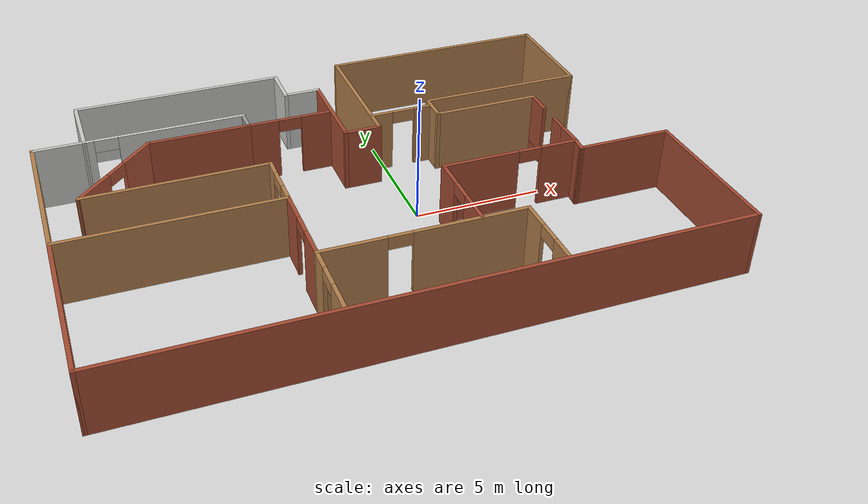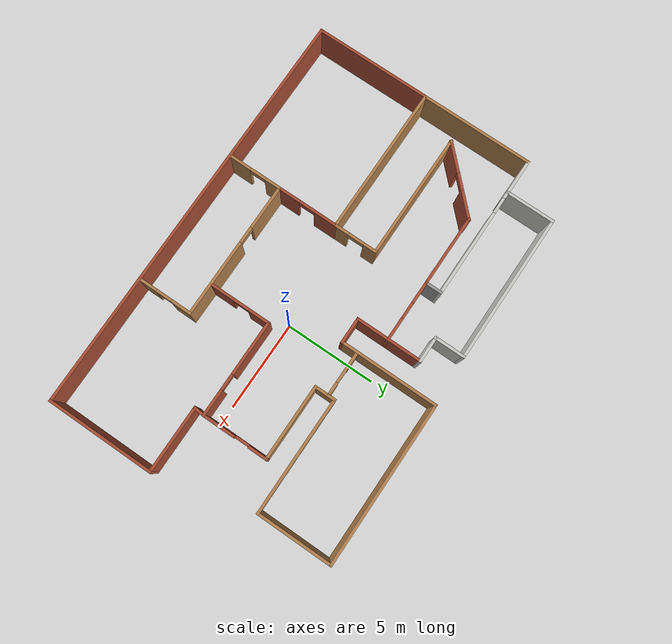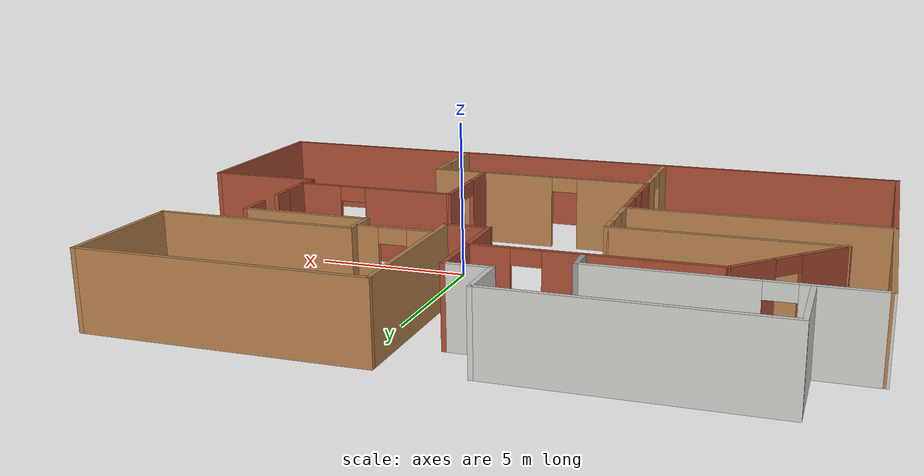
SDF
<?xml version='1.0'?>
<sdf version='1.7'>
  <model name='my_world'>
    <pose>-1.80415 0.520431 0 0 -0 0</pose>
    <link name='Wall_0'>
      <pose>5.19915 -1.20043 0 0 -0 0</pose>
      <visual name='Wall_0_Visual_0'>
        <pose>-1.21752 0 1.25 0 -0 0</pose>
        <geometry>
          <box>
            <size>3.06495 0.15 2.5</size>
          </box>
        </geometry>
        <material>
          <script>
            <uri>file://media/materials/scripts/gazebo.material</uri>
            <name>Gazebo/Bricks</name>
          </script>
          <ambient>1 1 1 1</ambient>
        </material>
        <meta>
          <layer>0</layer>
        </meta>
      </visual>
      <collision name='Wall_0_Collision_0'>
        <geometry>
          <box>
            <size>3.06495 0.15 2.5</size>
          </box>
        </geometry>
        <pose>-1.21752 0 1.25 0 -0 0</pose>
      </collision>
      <visual name='Wall_0_Visual_1'>
        <pose>1.98248 0 1.25 0 -0 0</pose>
        <geometry>
          <box>
            <size>1.53505 0.15 2.5</size>
          </box>
        </geometry>
        <material>
          <script>
            <uri>file://media/materials/scripts/gazebo.material</uri>
            <name>Gazebo/Bricks</name>
          </script>
          <ambient>1 1 1 1</ambient>
        </material>
        <meta>
          <layer>0</layer>
        </meta>
      </visual>
      <collision name='Wall_0_Collision_1'>
        <geometry>
          <box>
            <size>1.53505 0.15 2.5</size>
          </box>
        </geometry>
        <pose>1.98248 0 1.25 0 -0 0</pose>
      </collision>
      <visual name='Wall_0_Visual_2'>
        <pose>0.764952 0 2.25 0 -0 0</pose>
        <geometry>
          <box>
            <size>0.9 0.15 0.5</size>
          </box>
        </geometry>
        <material>
          <script>
            <uri>file://media/materials/scripts/gazebo.material</uri>
            <name>Gazebo/Bricks</name>
          </script>
          <ambient>1 1 1 1</ambient>
        </material>
        <meta>
          <layer>0</layer>
        </meta>
      </visual>
      <collision name='Wall_0_Collision_2'>
        <geometry>
          <box>
            <size>0.9 0.15 0.5</size>
          </box>
        </geometry>
        <pose>0.764952 0 2.25 0 -0 0</pose>
      </collision>
    </link>
    <link name='Wall_1'>
      <pose>7.87416 0.599569 0 0 -0 1.5708</pose>
      <visual name='Wall_1_Visual_0'>
        <pose>-1.32441 0 1.25 0 -0 0</pose>
        <geometry>
          <box>
            <size>1.10117 0.15 2.5</size>
          </box>
        </geometry>
        <material>
          <script>
            <uri>file://media/materials/scripts/gazebo.material</uri>
            <name>Gazebo/Bricks</name>
          </script>
          <ambient>1 1 1 1</ambient>
        </material>
        <meta>
          <layer>0</layer>
        </meta>
      </visual>
      <collision name='Wall_1_Collision_0'>
        <geometry>
          <box>
            <size>1.10117 0.15 2.5</size>
          </box>
        </geometry>
        <pose>-1.32441 0 1.25 0 -0 0</pose>
      </collision>
      <visual name='Wall_1_Visual_1'>
        <pose>0.550585 0 0.25 0 -0 0</pose>
        <geometry>
          <box>
            <size>2.64883 0.15 0.5</size>
          </box>
        </geometry>
        <material>
          <script>
            <uri>file://media/materials/scripts/gazebo.material</uri>
            <name>Gazebo/Bricks</name>
          </script>
          <ambient>1 1 1 1</ambient>
        </material>
        <meta>
          <layer>0</layer>
        </meta>
      </visual>
      <collision name='Wall_1_Collision_1'>
        <geometry>
          <box>
            <size>2.64883 0.15 0.5</size>
          </box>
        </geometry>
        <pose>0.550585 0 0.25 0 -0 0</pose>
      </collision>
      <visual name='Wall_1_Visual_2'>
        <pose>1.32206 0 1.5 0 -0 0</pose>
        <geometry>
          <box>
            <size>1.10588 0.15 2</size>
          </box>
        </geometry>
        <material>
          <script>
            <uri>file://media/materials/scripts/gazebo.material</uri>
            <name>Gazebo/Bricks</name>
          </script>
          <ambient>1 1 1 1</ambient>
        </material>
        <meta>
          <layer>0</layer>
        </meta>
      </visual>
      <collision name='Wall_1_Collision_2'>
        <geometry>
          <box>
            <size>1.10588 0.15 2</size>
          </box>
        </geometry>
        <pose>1.32206 0 1.5 0 -0 0</pose>
      </collision>
      <visual name='Wall_1_Visual_3'>
        <pose>-0.402355 0 1.9 0 -0 0</pose>
        <geometry>
          <box>
            <size>0.742949 0.15 1.2</size>
          </box>
        </geometry>
        <material>
          <script>
            <uri>file://media/materials/scripts/gazebo.material</uri>
            <name>Gazebo/Bricks</name>
          </script>
          <ambient>1 1 1 1</ambient>
        </material>
        <meta>
          <layer>0</layer>
        </meta>
      </visual>
      <collision name='Wall_1_Collision_3'>
        <geometry>
          <box>
            <size>0.742949 0.15 1.2</size>
          </box>
        </geometry>
        <pose>-0.402355 0 1.9 0 -0 0</pose>
      </collision>
    </link>
    <link name='Wall_10'>
      <collision name='Wall_10_Collision'>
        <geometry>
          <box>
            <size>1.5 0.15 2.5</size>
          </box>
        </geometry>
        <pose>0 0 1.25 0 -0 0</pose>
      </collision>
      <visual name='Wall_10_Visual'>
        <pose>0 0 1.25 0 -0 0</pose>
        <geometry>
          <box>
            <size>1.5 0.15 2.5</size>
          </box>
        </geometry>
        <material>
          <script>
            <uri>file://media/materials/scripts/gazebo.material</uri>
            <name>Gazebo/CeilingTiled</name>
          </script>
          <ambient>1 1 1 1</ambient>
        </material>
        <meta>
          <layer>0</layer>
        </meta>
      </visual>
      <pose>-0.750846 5.84957 0 0 -0 3.14159</pose>
    </link>
    <link name='Wall_11'>
      <collision name='Wall_11_Collision'>
        <geometry>
          <box>
            <size>1.75 0.15 2.5</size>
          </box>
        </geometry>
        <pose>0 0 1.25 0 -0 0</pose>
      </collision>
      <visual name='Wall_11_Visual'>
        <pose>0 0 1.25 0 -0 0</pose>
        <geometry>
          <box>
            <size>1.75 0.15 2.5</size>
          </box>
        </geometry>
        <material>
          <script>
            <uri>file://media/materials/scripts/gazebo.material</uri>
            <name>Gazebo/CeilingTiled</name>
          </script>
          <ambient>1 1 1 1</ambient>
        </material>
        <meta>
          <layer>0</layer>
        </meta>
      </visual>
      <pose>-1.42585 6.64957 0 0 -0 1.5708</pose>
    </link>
    <link name='Wall_12'>
      <collision name='Wall_12_Collision'>
        <geometry>
          <box>
            <size>8.25 0.15 2.5</size>
          </box>
        </geometry>
        <pose>0 0 1.25 0 -0 0</pose>
      </collision>
      <visual name='Wall_12_Visual'>
        <pose>0 0 1.25 0 -0 0</pose>
        <geometry>
          <box>
            <size>8.25 0.15 2.5</size>
          </box>
        </geometry>
        <material>
          <script>
            <uri>file://media/materials/scripts/gazebo.material</uri>
            <name>Gazebo/CeilingTiled</name>
          </script>
          <ambient>1 1 1 1</ambient>
        </material>
        <meta>
          <layer>0</layer>
        </meta>
      </visual>
      <pose>-5.47585 7.44957 0 0 -0 3.14159</pose>
    </link>
    <link name='Wall_13'>
      <collision name='Wall_13_Collision'>
        <geometry>
          <box>
            <size>2.75 0.15 2.5</size>
          </box>
        </geometry>
        <pose>0 0 1.25 0 -0 0</pose>
      </collision>
      <visual name='Wall_13_Visual'>
        <pose>0 0 1.25 0 -0 0</pose>
        <geometry>
          <box>
            <size>2.75 0.15 2.5</size>
          </box>
        </geometry>
        <material>
          <script>
            <uri>file://media/materials/scripts/gazebo.material</uri>
            <name>Gazebo/CeilingTiled</name>
          </script>
          <ambient>1 1 1 1</ambient>
        </material>
        <meta>
          <layer>0</layer>
        </meta>
      </visual>
      <pose>-9.52585 6.14957 0 0 -0 -1.5708</pose>
    </link>
    <link name='Wall_14'>
      <pose>-6.47584 4.84957 0 0 -0 0</pose>
      <visual name='Wall_14_Visual_0'>
        <pose>-2.90772 0 1.25 0 -0 0</pose>
        <geometry>
          <box>
            <size>0.434569 0.15 2.5</size>
          </box>
        </geometry>
        <material>
          <script>
            <uri>file://media/materials/scripts/gazebo.material</uri>
            <name>Gazebo/CeilingTiled</name>
          </script>
          <ambient>1 1 1 1</ambient>
        </material>
        <meta>
          <layer>0</layer>
        </meta>
      </visual>
      <collision name='Wall_14_Collision_0'>
        <geometry>
          <box>
            <size>0.434569 0.15 2.5</size>
          </box>
        </geometry>
        <pose>-2.90772 0 1.25 0 -0 0</pose>
      </collision>
      <visual name='Wall_14_Visual_1'>
        <pose>0.667285 0 1.25 0 -0 0</pose>
        <geometry>
          <box>
            <size>4.91543 0.15 2.5</size>
          </box>
        </geometry>
        <material>
          <script>
            <uri>file://media/materials/scripts/gazebo.material</uri>
            <name>Gazebo/CeilingTiled</name>
          </script>
          <ambient>1 1 1 1</ambient>
        </material>
        <meta>
          <layer>0</layer>
        </meta>
      </visual>
      <collision name='Wall_14_Collision_1'>
        <geometry>
          <box>
            <size>4.91543 0.15 2.5</size>
          </box>
        </geometry>
        <pose>0.667285 0 1.25 0 -0 0</pose>
      </collision>
      <visual name='Wall_14_Visual_2'>
        <pose>-2.24043 0 2.25 0 -0 0</pose>
        <geometry>
          <box>
            <size>0.9 0.15 0.5</size>
          </box>
        </geometry>
        <material>
          <script>
            <uri>file://media/materials/scripts/gazebo.material</uri>
            <name>Gazebo/CeilingTiled</name>
          </script>
          <ambient>1 1 1 1</ambient>
        </material>
        <meta>
          <layer>0</layer>
        </meta>
      </visual>
      <collision name='Wall_14_Collision_2'>
        <geometry>
          <box>
            <size>0.9 0.15 0.5</size>
          </box>
        </geometry>
        <pose>-2.24043 0 2.25 0 -0 0</pose>
      </collision>
    </link>
    <link name='Wall_15'>
      <collision name='Wall_15_Collision'>
        <geometry>
          <box>
            <size>1 0.15 2.5</size>
          </box>
        </geometry>
        <pose>0 0 1.25 0 -0 0</pose>
      </collision>
      <visual name='Wall_15_Visual'>
        <pose>0 0 1.25 0 -0 0</pose>
        <geometry>
          <box>
            <size>1 0.15 2.5</size>
          </box>
        </geometry>
        <material>
          <script>
            <uri>file://media/materials/scripts/gazebo.material</uri>
            <name>Gazebo/Grey</name>
          </script>
          <ambient>1 1 1 1</ambient>
        </material>
        <meta>
          <layer>0</layer>
        </meta>
      </visual>
      <pose>-3.42585 4.42457 0 0 -0 -1.5708</pose>
    </link>
    <link name='Wall_16'>
      <collision name='Wall_16_Collision'>
        <geometry>
          <box>
            <size>4 0.15 2.5</size>
          </box>
        </geometry>
        <pose>0 0 1.25 0 -0 0</pose>
      </collision>
      <visual name='Wall_16_Visual'>
        <pose>0 0 1.25 0 -0 0</pose>
        <geometry>
          <box>
            <size>4 0.15 2.5</size>
          </box>
        </geometry>
        <material>
          <script>
            <uri>file://media/materials/scripts/gazebo.material</uri>
            <name>Gazebo/Bricks</name>
          </script>
          <ambient>1 1 1 1</ambient>
        </material>
        <meta>
          <layer>0</layer>
        </meta>
      </visual>
      <pose>-5.35085 3.99957 0 0 -0 3.14159</pose>
    </link>
    <link name='Wall_17'>
      <pose>-8.72541 2.55 0 0 -0 -2.35619</pose>
      <visual name='Wall_17_Visual_0'>
        <pose>-1.31893 0 1.25 0 -0 0</pose>
        <geometry>
          <box>
            <size>1.61213 0.15 2.5</size>
          </box>
        </geometry>
        <material>
          <script>
            <uri>file://media/materials/scripts/gazebo.material</uri>
            <name>Gazebo/Bricks</name>
          </script>
          <ambient>1 1 1 1</ambient>
        </material>
        <meta>
          <layer>0</layer>
        </meta>
      </visual>
      <collision name='Wall_17_Collision_0'>
        <geometry>
          <box>
            <size>1.61213 0.15 2.5</size>
          </box>
        </geometry>
        <pose>-1.31893 0 1.25 0 -0 0</pose>
      </collision>
      <visual name='Wall_17_Visual_1'>
        <pose>1.25606 0 1.25 0 -0 0</pose>
        <geometry>
          <box>
            <size>1.73787 0.15 2.5</size>
          </box>
        </geometry>
        <material>
          <script>
            <uri>file://media/materials/scripts/gazebo.material</uri>
            <name>Gazebo/Bricks</name>
          </script>
          <ambient>1 1 1 1</ambient>
        </material>
        <meta>
          <layer>0</layer>
        </meta>
      </visual>
      <collision name='Wall_17_Collision_1'>
        <geometry>
          <box>
            <size>1.73787 0.15 2.5</size>
          </box>
        </geometry>
        <pose>1.25606 0 1.25 0 -0 0</pose>
      </collision>
      <visual name='Wall_17_Visual_2'>
        <pose>-0.06287 0 2.25 0 -0 0</pose>
        <geometry>
          <box>
            <size>0.9 0.15 0.5</size>
          </box>
        </geometry>
        <material>
          <script>
            <uri>file://media/materials/scripts/gazebo.material</uri>
            <name>Gazebo/Bricks</name>
          </script>
          <ambient>1 1 1 1</ambient>
        </material>
        <meta>
          <layer>0</layer>
        </meta>
      </visual>
      <collision name='Wall_17_Collision_2'>
        <geometry>
          <box>
            <size>0.9 0.15 0.5</size>
          </box>
        </geometry>
        <pose>-0.06287 0 2.25 0 -0 0</pose>
      </collision>
    </link>
    <link name='Wall_18'>
      <collision name='Wall_18_Collision'>
        <geometry>
          <box>
            <size>7 0.15 2.5</size>
          </box>
        </geometry>
        <pose>0 0 1.25 0 -0 0</pose>
      </collision>
      <visual name='Wall_18_Visual'>
        <pose>0 0 1.25 0 -0 0</pose>
        <geometry>
          <box>
            <size>7 0.15 2.5</size>
          </box>
        </geometry>
        <material>
          <script>
            <uri>file://media/materials/scripts/gazebo.material</uri>
            <name>Gazebo/Wood</name>
          </script>
          <ambient>1 1 1 1</ambient>
        </material>
        <meta>
          <layer>0</layer>
        </meta>
      </visual>
      <pose>-6.74998 1.10043 0 0 -0 0</pose>
    </link>
    <link name='Wall_19'>
      <pose>-3.32498 -0.074569 0 0 -0 -1.5708</pose>
      <visual name='Wall_19_Visual_0'>
        <pose>-0.876329 0 1.25 0 -0 0</pose>
        <geometry>
          <box>
            <size>0.747341 0.15 2.5</size>
          </box>
        </geometry>
        <material>
          <script>
            <uri>file://media/materials/scripts/gazebo.material</uri>
            <name>Gazebo/Wood</name>
          </script>
          <ambient>1 1 1 1</ambient>
        </material>
        <meta>
          <layer>0</layer>
        </meta>
      </visual>
      <collision name='Wall_19_Collision_0'>
        <geometry>
          <box>
            <size>0.747341 0.15 2.5</size>
          </box>
        </geometry>
        <pose>-0.876329 0 1.25 0 -0 0</pose>
      </collision>
      <visual name='Wall_19_Visual_1'>
        <pose>0.823671 0 1.25 0 -0 0</pose>
        <geometry>
          <box>
            <size>0.852659 0.15 2.5</size>
          </box>
        </geometry>
        <material>
          <script>
            <uri>file://media/materials/scripts/gazebo.material</uri>
            <name>Gazebo/Wood</name>
          </script>
          <ambient>1 1 1 1</ambient>
        </material>
        <meta>
          <layer>0</layer>
        </meta>
      </visual>
      <collision name='Wall_19_Collision_1'>
        <geometry>
          <box>
            <size>0.852659 0.15 2.5</size>
          </box>
        </geometry>
        <pose>0.823671 0 1.25 0 -0 0</pose>
      </collision>
      <visual name='Wall_19_Visual_2'>
        <pose>-0.052659 0 2.25 0 -0 0</pose>
        <geometry>
          <box>
            <size>0.9 0.15 0.5</size>
          </box>
        </geometry>
        <material>
          <script>
            <uri>file://media/materials/scripts/gazebo.material</uri>
            <name>Gazebo/Wood</name>
          </script>
          <ambient>1 1 1 1</ambient>
        </material>
        <meta>
          <layer>0</layer>
        </meta>
      </visual>
      <collision name='Wall_19_Collision_2'>
        <geometry>
          <box>
            <size>0.9 0.15 0.5</size>
          </box>
        </geometry>
        <pose>-0.052659 0 2.25 0 -0 0</pose>
      </collision>
    </link>
    <link name='Wall_2'>
      <collision name='Wall_2_Collision'>
        <geometry>
          <box>
            <size>4.25 0.15 2.5</size>
          </box>
        </geometry>
        <pose>0 0 1.25 0 -0 0</pose>
      </collision>
      <visual name='Wall_2_Visual'>
        <pose>0 0 1.25 0 -0 0</pose>
        <geometry>
          <box>
            <size>4.25 0.15 2.5</size>
          </box>
        </geometry>
        <material>
          <script>
            <uri>file://media/materials/scripts/gazebo.material</uri>
            <name>Gazebo/Wood</name>
          </script>
          <ambient>1 1 1 1</ambient>
        </material>
        <meta>
          <layer>0</layer>
        </meta>
      </visual>
      <pose>5.82415 2.39957 0 0 -0 3.14159</pose>
    </link>
    <link name='Wall_20'>
      <collision name='Wall_20_Collision'>
        <geometry>
          <box>
            <size>8.25 0.15 2.5</size>
          </box>
        </geometry>
        <pose>0 0 1.25 0 -0 0</pose>
      </collision>
      <visual name='Wall_20_Visual'>
        <pose>0 0 1.25 0 -0 0</pose>
        <geometry>
          <box>
            <size>8.25 0.15 2.5</size>
          </box>
        </geometry>
        <material>
          <script>
            <uri>file://media/materials/scripts/gazebo.material</uri>
            <name>Gazebo/Wood</name>
          </script>
          <ambient>1 1 1 1</ambient>
        </material>
        <meta>
          <layer>0</layer>
        </meta>
      </visual>
      <pose>-7.37498 -1.24957 0 0 -0 3.14159</pose>
    </link>
    <link name='Wall_21'>
      <collision name='Wall_21_Collision'>
        <geometry>
          <box>
            <size>6.5 0.15 2.5</size>
          </box>
        </geometry>
        <pose>0 0 1.25 0 -0 0</pose>
      </collision>
      <visual name='Wall_21_Visual'>
        <pose>0 0 1.25 0 -0 0</pose>
        <geometry>
          <box>
            <size>6.5 0.15 2.5</size>
          </box>
        </geometry>
        <material>
          <script>
            <uri>file://media/materials/scripts/gazebo.material</uri>
            <name>Gazebo/Bricks</name>
          </script>
          <ambient>1 1 1 1</ambient>
        </material>
        <meta>
          <layer>0</layer>
        </meta>
      </visual>
      <pose>-11.425 -4.42457 0 0 -0 -1.5708</pose>
    </link>
    <link name='Wall_22'>
      <collision name='Wall_22_Collision'>
        <geometry>
          <box>
            <size>23 0.15 2.5</size>
          </box>
        </geometry>
        <pose>0 0 1.25 0 -0 0</pose>
      </collision>
      <visual name='Wall_22_Visual'>
        <pose>0 0 1.25 0 -0 0</pose>
        <geometry>
          <box>
            <size>23 0.15 2.5</size>
          </box>
        </geometry>
        <material>
          <script>
            <uri>file://media/materials/scripts/gazebo.material</uri>
            <name>Gazebo/Bricks</name>
          </script>
          <ambient>1 1 1 1</ambient>
        </material>
        <meta>
          <layer>0</layer>
        </meta>
      </visual>
      <pose>1.7e-05 -7.59957 0 0 -0 0</pose>
    </link>
    <link name='Wall_23'>
      <collision name='Wall_23_Collision'>
        <geometry>
          <box>
            <size>6 0.15 2.5</size>
          </box>
        </geometry>
        <pose>0 0 1.25 0 -0 0</pose>
      </collision>
      <visual name='Wall_23_Visual'>
        <pose>0 0 1.25 0 -0 0</pose>
        <geometry>
          <box>
            <size>6 0.15 2.5</size>
          </box>
        </geometry>
        <material>
          <script>
            <uri>file://media/materials/scripts/gazebo.material</uri>
            <name>Gazebo/Bricks</name>
          </script>
          <ambient>1 1 1 1</ambient>
        </material>
        <meta>
          <layer>0</layer>
        </meta>
      </visual>
      <pose>11.425 -4.67457 0 0 -0 1.5708</pose>
    </link>
    <link name='Wall_24'>
      <collision name='Wall_24_Collision'>
        <geometry>
          <box>
            <size>3.75 0.15 2.5</size>
          </box>
        </geometry>
        <pose>0 0 1.25 0 -0 0</pose>
      </collision>
      <visual name='Wall_24_Visual'>
        <pose>0 0 1.25 0 -0 0</pose>
        <geometry>
          <box>
            <size>3.75 0.15 2.5</size>
          </box>
        </geometry>
        <material>
          <script>
            <uri>file://media/materials/scripts/gazebo.material</uri>
            <name>Gazebo/Bricks</name>
          </script>
          <ambient>1 1 1 1</ambient>
        </material>
        <meta>
          <layer>0</layer>
        </meta>
      </visual>
      <pose>9.62502 -1.74957 0 0 -0 3.14159</pose>
    </link>
    <link name='Wall_25'>
      <collision name='Wall_25_Collision'>
        <geometry>
          <box>
            <size>0.701332 0.15 2.5</size>
          </box>
        </geometry>
        <pose>0 0 1.25 0 -0 0</pose>
      </collision>
      <visual name='Wall_25_Visual'>
        <pose>0 0 1.25 0 -0 0</pose>
        <geometry>
          <box>
            <size>0.701332 0.15 2.5</size>
          </box>
        </geometry>
        <material>
          <script>
            <uri>file://media/materials/scripts/gazebo.material</uri>
            <name>Gazebo/Bricks</name>
          </script>
          <ambient>1 1 1 1</ambient>
        </material>
        <meta>
          <layer>0</layer>
        </meta>
      </visual>
      <pose>7.84959 -1.475 0 0 -0 1.48155</pose>
    </link>
    <link name='Wall_27'>
      <pose>-3.32498 -2.92457 0 0 -0 -1.5708</pose>
      <visual name='Wall_27_Visual_0'>
        <pose>-1.09875 0 1.25 0 -0 0</pose>
        <geometry>
          <box>
            <size>1.30251 0.15 2.5</size>
          </box>
        </geometry>
        <material>
          <script>
            <uri>file://media/materials/scripts/gazebo.material</uri>
            <name>Gazebo/Bricks</name>
          </script>
          <ambient>1 1 1 1</ambient>
        </material>
        <meta>
          <layer>0</layer>
        </meta>
      </visual>
      <collision name='Wall_27_Collision_0'>
        <geometry>
          <box>
            <size>1.30251 0.15 2.5</size>
          </box>
        </geometry>
        <pose>-1.09875 0 1.25 0 -0 0</pose>
      </collision>
      <visual name='Wall_27_Visual_1'>
        <pose>1.10125 0 1.25 0 -0 0</pose>
        <geometry>
          <box>
            <size>1.29749 0.15 2.5</size>
          </box>
        </geometry>
        <material>
          <script>
            <uri>file://media/materials/scripts/gazebo.material</uri>
            <name>Gazebo/Bricks</name>
          </script>
          <ambient>1 1 1 1</ambient>
        </material>
        <meta>
          <layer>0</layer>
        </meta>
      </visual>
      <collision name='Wall_27_Collision_1'>
        <geometry>
          <box>
            <size>1.29749 0.15 2.5</size>
          </box>
        </geometry>
        <pose>1.10125 0 1.25 0 -0 0</pose>
      </collision>
      <visual name='Wall_27_Visual_2'>
        <pose>0.002507 0 2.25 0 -0 0</pose>
        <geometry>
          <box>
            <size>0.9 0.15 0.5</size>
          </box>
        </geometry>
        <material>
          <script>
            <uri>file://media/materials/scripts/gazebo.material</uri>
            <name>Gazebo/Bricks</name>
          </script>
          <ambient>1 1 1 1</ambient>
        </material>
        <meta>
          <layer>0</layer>
        </meta>
      </visual>
      <collision name='Wall_27_Collision_2'>
        <geometry>
          <box>
            <size>0.9 0.15 0.5</size>
          </box>
        </geometry>
        <pose>0.002507 0 2.25 0 -0 0</pose>
      </collision>
    </link>
    <link name='Wall_28'>
      <pose>0.475017 -4.59957 0 0 -0 0</pose>
      <visual name='Wall_28_Visual_0'>
        <pose>-2.61508 0 1.25 0 -0 0</pose>
        <geometry>
          <box>
            <size>2.51985 0.15 2.5</size>
          </box>
        </geometry>
        <material>
          <script>
            <uri>file://media/materials/scripts/gazebo.material</uri>
            <name>Gazebo/Wood</name>
          </script>
          <ambient>1 1 1 1</ambient>
        </material>
        <meta>
          <layer>0</layer>
        </meta>
      </visual>
      <collision name='Wall_28_Collision_0'>
        <geometry>
          <box>
            <size>2.51985 0.15 2.5</size>
          </box>
        </geometry>
        <pose>-2.61508 0 1.25 0 -0 0</pose>
      </collision>
      <visual name='Wall_28_Visual_1'>
        <pose>1.70992 0 1.25 0 -0 0</pose>
        <geometry>
          <box>
            <size>4.33015 0.15 2.5</size>
          </box>
        </geometry>
        <material>
          <script>
            <uri>file://media/materials/scripts/gazebo.material</uri>
            <name>Gazebo/Wood</name>
          </script>
          <ambient>1 1 1 1</ambient>
        </material>
        <meta>
          <layer>0</layer>
        </meta>
      </visual>
      <collision name='Wall_28_Collision_1'>
        <geometry>
          <box>
            <size>4.33015 0.15 2.5</size>
          </box>
        </geometry>
        <pose>1.70992 0 1.25 0 -0 0</pose>
      </collision>
      <visual name='Wall_28_Visual_2'>
        <pose>-0.905153 0 2.25 0 -0 0</pose>
        <geometry>
          <box>
            <size>0.9 0.15 0.5</size>
          </box>
        </geometry>
        <material>
          <script>
            <uri>file://media/materials/scripts/gazebo.material</uri>
            <name>Gazebo/Wood</name>
          </script>
          <ambient>1 1 1 1</ambient>
        </material>
        <meta>
          <layer>0</layer>
        </meta>
      </visual>
      <collision name='Wall_28_Collision_2'>
        <geometry>
          <box>
            <size>0.9 0.15 0.5</size>
          </box>
        </geometry>
        <pose>-0.905153 0 2.25 0 -0 0</pose>
      </collision>
    </link>
    <link name='Wall_29'>
      <pose>4.27502 -6.02457 0 0 -0 -1.5708</pose>
      <visual name='Wall_29_Visual_0'>
        <pose>-0.921624 0 1.25 0 -0 0</pose>
        <geometry>
          <box>
            <size>1.15675 0.15 2.5</size>
          </box>
        </geometry>
        <material>
          <script>
            <uri>file://media/materials/scripts/gazebo.material</uri>
            <name>Gazebo/Wood</name>
          </script>
          <ambient>1 1 1 1</ambient>
        </material>
        <meta>
          <layer>0</layer>
        </meta>
      </visual>
      <collision name='Wall_29_Collision_0'>
        <geometry>
          <box>
            <size>1.15675 0.15 2.5</size>
          </box>
        </geometry>
        <pose>-0.921624 0 1.25 0 -0 0</pose>
      </collision>
      <visual name='Wall_29_Visual_1'>
        <pose>1.02838 0 1.25 0 -0 0</pose>
        <geometry>
          <box>
            <size>0.943247 0.15 2.5</size>
          </box>
        </geometry>
        <material>
          <script>
            <uri>file://media/materials/scripts/gazebo.material</uri>
            <name>Gazebo/Wood</name>
          </script>
          <ambient>1 1 1 1</ambient>
        </material>
        <meta>
          <layer>0</layer>
        </meta>
      </visual>
      <collision name='Wall_29_Collision_1'>
        <geometry>
          <box>
            <size>0.943247 0.15 2.5</size>
          </box>
        </geometry>
        <pose>1.02838 0 1.25 0 -0 0</pose>
      </collision>
      <visual name='Wall_29_Visual_2'>
        <pose>0.106753 0 2.25 0 -0 0</pose>
        <geometry>
          <box>
            <size>0.9 0.15 0.5</size>
          </box>
        </geometry>
        <material>
          <script>
            <uri>file://media/materials/scripts/gazebo.material</uri>
            <name>Gazebo/Wood</name>
          </script>
          <ambient>1 1 1 1</ambient>
        </material>
        <meta>
          <layer>0</layer>
        </meta>
      </visual>
      <collision name='Wall_29_Collision_2'>
        <geometry>
          <box>
            <size>0.9 0.15 0.5</size>
          </box>
        </geometry>
        <pose>0.106753 0 2.25 0 -0 0</pose>
      </collision>
    </link>
    <link name='Wall_3'>
      <collision name='Wall_3_Collision'>
        <geometry>
          <box>
            <size>1.25 0.15 2.5</size>
          </box>
        </geometry>
        <pose>0 0 1.25 0 -0 0</pose>
      </collision>
      <visual name='Wall_3_Visual'>
        <pose>0 0 1.25 0 -0 0</pose>
        <geometry>
          <box>
            <size>1.25 0.15 2.5</size>
          </box>
        </geometry>
        <material>
          <script>
            <uri>file://media/materials/scripts/gazebo.material</uri>
            <name>Gazebo/Wood</name>
          </script>
          <ambient>1 1 1 1</ambient>
        </material>
        <meta>
          <layer>0</layer>
        </meta>
      </visual>
      <pose>3.77415 2.94957 0 0 -0 1.5708</pose>
    </link>
    <link name='Wall_31'>
      <pose>-3.32498 -6.02457 0 0 -0 -1.5708</pose>
      <visual name='Wall_31_Visual_0'>
        <pose>-1.03831 0 1.25 0 -0 0</pose>
        <geometry>
          <box>
            <size>0.923382 0.15 2.5</size>
          </box>
        </geometry>
        <material>
          <script>
            <uri>file://media/materials/scripts/gazebo.material</uri>
            <name>Gazebo/Wood</name>
          </script>
          <ambient>1 1 1 1</ambient>
        </material>
        <meta>
          <layer>0</layer>
        </meta>
      </visual>
      <collision name='Wall_31_Collision_0'>
        <geometry>
          <box>
            <size>0.923382 0.15 2.5</size>
          </box>
        </geometry>
        <pose>-1.03831 0 1.25 0 -0 0</pose>
      </collision>
      <visual name='Wall_31_Visual_1'>
        <pose>0.911691 0 1.25 0 -0 0</pose>
        <geometry>
          <box>
            <size>1.17662 0.15 2.5</size>
          </box>
        </geometry>
        <material>
          <script>
            <uri>file://media/materials/scripts/gazebo.material</uri>
            <name>Gazebo/Wood</name>
          </script>
          <ambient>1 1 1 1</ambient>
        </material>
        <meta>
          <layer>0</layer>
        </meta>
      </visual>
      <collision name='Wall_31_Collision_1'>
        <geometry>
          <box>
            <size>1.17662 0.15 2.5</size>
          </box>
        </geometry>
        <pose>0.911691 0 1.25 0 -0 0</pose>
      </collision>
      <visual name='Wall_31_Visual_2'>
        <pose>-0.126618 0 2.25 0 -0 0</pose>
        <geometry>
          <box>
            <size>0.9 0.15 0.5</size>
          </box>
        </geometry>
        <material>
          <script>
            <uri>file://media/materials/scripts/gazebo.material</uri>
            <name>Gazebo/Wood</name>
          </script>
          <ambient>1 1 1 1</ambient>
        </material>
        <meta>
          <layer>0</layer>
        </meta>
      </visual>
      <collision name='Wall_31_Collision_2'>
        <geometry>
          <box>
            <size>0.9 0.15 0.5</size>
          </box>
        </geometry>
        <pose>-0.126618 0 2.25 0 -0 0</pose>
      </collision>
    </link>
    <link name='Wall_33'>
      <pose>2.52177 3.13342 0 0 -0 0</pose>
      <visual name='Wall_33_Visual_0'>
        <pose>-0.822221 0 1.25 0 -0 0</pose>
        <geometry>
          <box>
            <size>0.855557 0.15 2.5</size>
          </box>
        </geometry>
        <material>
          <script>
            <uri>file://media/materials/scripts/gazebo.material</uri>
            <name>Gazebo/Wood</name>
          </script>
          <ambient>1 1 1 1</ambient>
        </material>
        <meta>
          <layer>0</layer>
        </meta>
      </visual>
      <collision name='Wall_33_Collision_0'>
        <geometry>
          <box>
            <size>0.855557 0.15 2.5</size>
          </box>
        </geometry>
        <pose>-0.822221 0 1.25 0 -0 0</pose>
      </collision>
      <visual name='Wall_33_Visual_1'>
        <pose>0.877779 0 1.25 0 -0 0</pose>
        <geometry>
          <box>
            <size>0.744443 0.15 2.5</size>
          </box>
        </geometry>
        <material>
          <script>
            <uri>file://media/materials/scripts/gazebo.material</uri>
            <name>Gazebo/Wood</name>
          </script>
          <ambient>1 1 1 1</ambient>
        </material>
        <meta>
          <layer>0</layer>
        </meta>
      </visual>
      <collision name='Wall_33_Collision_1'>
        <geometry>
          <box>
            <size>0.744443 0.15 2.5</size>
          </box>
        </geometry>
        <pose>0.877779 0 1.25 0 -0 0</pose>
      </collision>
      <visual name='Wall_33_Visual_2'>
        <pose>0.055557 0 2.25 0 -0 0</pose>
        <geometry>
          <box>
            <size>0.9 0.15 0.5</size>
          </box>
        </geometry>
        <material>
          <script>
            <uri>file://media/materials/scripts/gazebo.material</uri>
            <name>Gazebo/Wood</name>
          </script>
          <ambient>1 1 1 1</ambient>
        </material>
        <meta>
          <layer>0</layer>
        </meta>
      </visual>
      <collision name='Wall_33_Collision_2'>
        <geometry>
          <box>
            <size>0.9 0.15 0.5</size>
          </box>
        </geometry>
        <pose>0.055557 0 2.25 0 -0 0</pose>
      </collision>
    </link>
    <link name='Wall_35'>
      <collision name='Wall_35_Collision'>
        <geometry>
          <box>
            <size>6.25 0.15 2.5</size>
          </box>
        </geometry>
        <pose>0 0 1.25 0 -0 0</pose>
      </collision>
      <visual name='Wall_35_Visual'>
        <pose>0 0 1.25 0 -0 0</pose>
        <geometry>
          <box>
            <size>6.25 0.15 2.5</size>
          </box>
        </geometry>
        <material>
          <script>
            <uri>file://media/materials/scripts/gazebo.material</uri>
            <name>Gazebo/Wood</name>
          </script>
          <ambient>1 1 1 1</ambient>
        </material>
        <meta>
          <layer>0</layer>
        </meta>
      </visual>
      <pose>-11.425 1.80043 0 0 -0 1.5708</pose>
    </link>
    <link name='Wall_36'>
      <collision name='Wall_36_Collision'>
        <geometry>
          <box>
            <size>2.04914 0.15 2.5</size>
          </box>
        </geometry>
        <pose>0 0 1.25 0 -0 0</pose>
      </collision>
      <visual name='Wall_36_Visual'>
        <pose>0 0 1.25 0 -0 0</pose>
        <geometry>
          <box>
            <size>2.04914 0.15 2.5</size>
          </box>
        </geometry>
        <material>
          <script>
            <uri>file://media/materials/scripts/gazebo.material</uri>
            <name>Gazebo/CeilingTiled</name>
          </script>
          <ambient>1 1 1 1</ambient>
        </material>
        <meta>
          <layer>0</layer>
        </meta>
      </visual>
      <pose>-10.4754 4.85 0 0 -0 -0.000454</pose>
    </link>
    <link name='Wall_38'>
      <pose>-1.75085 3.99957 0 0 -0 0</pose>
      <visual name='Wall_38_Visual_0'>
        <pose>-1.11647 0 1.25 0 -0 0</pose>
        <geometry>
          <box>
            <size>1.26705 0.15 2.5</size>
          </box>
        </geometry>
        <material>
          <script>
            <uri>file://media/materials/scripts/gazebo.material</uri>
            <name>Gazebo/Bricks</name>
          </script>
          <ambient>1 1 1 1</ambient>
        </material>
        <meta>
          <layer>0</layer>
        </meta>
      </visual>
      <collision name='Wall_38_Collision_0'>
        <geometry>
          <box>
            <size>1.26705 0.15 2.5</size>
          </box>
        </geometry>
        <pose>-1.11647 0 1.25 0 -0 0</pose>
      </collision>
      <visual name='Wall_38_Visual_1'>
        <pose>1.08353 0 1.25 0 -0 0</pose>
        <geometry>
          <box>
            <size>1.33295 0.15 2.5</size>
          </box>
        </geometry>
        <material>
          <script>
            <uri>file://media/materials/scripts/gazebo.material</uri>
            <name>Gazebo/Bricks</name>
          </script>
          <ambient>1 1 1 1</ambient>
        </material>
        <meta>
          <layer>0</layer>
        </meta>
      </visual>
      <collision name='Wall_38_Collision_1'>
        <geometry>
          <box>
            <size>1.33295 0.15 2.5</size>
          </box>
        </geometry>
        <pose>1.08353 0 1.25 0 -0 0</pose>
      </collision>
      <visual name='Wall_38_Visual_2'>
        <pose>-0.032946 0 2.25 0 -0 0</pose>
        <geometry>
          <box>
            <size>0.9 0.15 0.5</size>
          </box>
        </geometry>
        <material>
          <script>
            <uri>file://media/materials/scripts/gazebo.material</uri>
            <name>Gazebo/Bricks</name>
          </script>
          <ambient>1 1 1 1</ambient>
        </material>
        <meta>
          <layer>0</layer>
        </meta>
      </visual>
      <collision name='Wall_38_Collision_2'>
        <geometry>
          <box>
            <size>0.9 0.15 0.5</size>
          </box>
        </geometry>
        <pose>-0.032946 0 2.25 0 -0 0</pose>
      </collision>
    </link>
    <link name='Wall_4'>
      <collision name='Wall_4_Collision'>
        <geometry>
          <box>
            <size>6.5 0.15 2.5</size>
          </box>
        </geometry>
        <pose>0 0 1.25 0 -0 0</pose>
      </collision>
      <visual name='Wall_4_Visual'>
        <pose>0 0 1.25 0 -0 0</pose>
        <geometry>
          <box>
            <size>6.5 0.15 2.5</size>
          </box>
        </geometry>
        <material>
          <script>
            <uri>file://media/materials/scripts/gazebo.material</uri>
            <name>Gazebo/Wood</name>
          </script>
          <ambient>1 1 1 1</ambient>
        </material>
        <meta>
          <layer>0</layer>
        </meta>
      </visual>
      <pose>6.94915 3.49957 0 0 -0 0</pose>
    </link>
    <link name='Wall_40'>
      <pose>2.52415 -2.87543 0 0 -0 1.5708</pose>
      <visual name='Wall_40_Visual_0'>
        <pose>-1.06009 0 1.25 0 -0 0</pose>
        <geometry>
          <box>
            <size>1.37982 0.15 2.5</size>
          </box>
        </geometry>
        <material>
          <script>
            <uri>file://media/materials/scripts/gazebo.material</uri>
            <name>Gazebo/Bricks</name>
          </script>
          <ambient>1 1 1 1</ambient>
        </material>
        <meta>
          <layer>0</layer>
        </meta>
      </visual>
      <collision name='Wall_40_Collision_0'>
        <geometry>
          <box>
            <size>1.37982 0.15 2.5</size>
          </box>
        </geometry>
        <pose>-1.06009 0 1.25 0 -0 0</pose>
      </collision>
      <visual name='Wall_40_Visual_1'>
        <pose>1.13991 0 1.25 0 -0 0</pose>
        <geometry>
          <box>
            <size>1.22018 0.15 2.5</size>
          </box>
        </geometry>
        <material>
          <script>
            <uri>file://media/materials/scripts/gazebo.material</uri>
            <name>Gazebo/Bricks</name>
          </script>
          <ambient>1 1 1 1</ambient>
        </material>
        <meta>
          <layer>0</layer>
        </meta>
      </visual>
      <collision name='Wall_40_Collision_1'>
        <geometry>
          <box>
            <size>1.22018 0.15 2.5</size>
          </box>
        </geometry>
        <pose>1.13991 0 1.25 0 -0 0</pose>
      </collision>
      <visual name='Wall_40_Visual_2'>
        <pose>0.079824 0 2.25 0 -0 0</pose>
        <geometry>
          <box>
            <size>0.9 0.15 0.5</size>
          </box>
        </geometry>
        <material>
          <script>
            <uri>file://media/materials/scripts/gazebo.material</uri>
            <name>Gazebo/Bricks</name>
          </script>
          <ambient>1 1 1 1</ambient>
        </material>
        <meta>
          <layer>0</layer>
        </meta>
      </visual>
      <collision name='Wall_40_Collision_2'>
        <geometry>
          <box>
            <size>0.9 0.15 0.5</size>
          </box>
        </geometry>
        <pose>0.079824 0 2.25 0 -0 0</pose>
      </collision>
    </link>
    <link name='Wall_5'>
      <collision name='Wall_5_Collision'>
        <geometry>
          <box>
            <size>4.25 0.15 2.5</size>
          </box>
        </geometry>
        <pose>0 0 1.25 0 -0 0</pose>
      </collision>
      <visual name='Wall_5_Visual'>
        <pose>0 0 1.25 0 -0 0</pose>
        <geometry>
          <box>
            <size>4.25 0.15 2.5</size>
          </box>
        </geometry>
        <material>
          <script>
            <uri>file://media/materials/scripts/gazebo.material</uri>
            <name>Gazebo/Wood</name>
          </script>
          <ambient>1 1 1 1</ambient>
        </material>
        <meta>
          <layer>0</layer>
        </meta>
      </visual>
      <pose>10.1242 5.54957 0 0 -0 1.5708</pose>
    </link>
    <link name='Wall_6'>
      <collision name='Wall_6_Collision'>
        <geometry>
          <box>
            <size>9 0.15 2.5</size>
          </box>
        </geometry>
        <pose>0 0 1.25 0 -0 0</pose>
      </collision>
      <visual name='Wall_6_Visual'>
        <pose>0 0 1.25 0 -0 0</pose>
        <geometry>
          <box>
            <size>9 0.15 2.5</size>
          </box>
        </geometry>
        <material>
          <script>
            <uri>file://media/materials/scripts/gazebo.material</uri>
            <name>Gazebo/Wood</name>
          </script>
          <ambient>1 1 1 1</ambient>
        </material>
        <meta>
          <layer>0</layer>
        </meta>
      </visual>
      <pose>5.69915 7.59957 0 0 -0 3.14159</pose>
    </link>
    <link name='Wall_7'>
      <collision name='Wall_7_Collision'>
        <geometry>
          <box>
            <size>5.5 0.15 2.5</size>
          </box>
        </geometry>
        <pose>0 0 1.25 0 -0 0</pose>
      </collision>
      <visual name='Wall_7_Visual'>
        <pose>0 0 1.25 0 -0 0</pose>
        <geometry>
          <box>
            <size>5.5 0.15 2.5</size>
          </box>
        </geometry>
        <material>
          <script>
            <uri>file://media/materials/scripts/gazebo.material</uri>
            <name>Gazebo/Wood</name>
          </script>
          <ambient>1 1 1 1</ambient>
        </material>
        <meta>
          <layer>0</layer>
        </meta>
      </visual>
      <pose>1.27415 4.92457 0 0 -0 -1.5708</pose>
    </link>
    <link name='Wall_8'>
      <collision name='Wall_8_Collision'>
        <geometry>
          <box>
            <size>1.5 0.15 2.5</size>
          </box>
        </geometry>
        <pose>0 0 1.25 0 -0 0</pose>
      </collision>
      <visual name='Wall_8_Visual'>
        <pose>0 0 1.25 0 -0 0</pose>
        <geometry>
          <box>
            <size>1.5 0.15 2.5</size>
          </box>
        </geometry>
        <material>
          <script>
            <uri>file://media/materials/scripts/gazebo.material</uri>
            <name>Gazebo/Bricks</name>
          </script>
          <ambient>1 1 1 1</ambient>
        </material>
        <meta>
          <layer>0</layer>
        </meta>
      </visual>
      <pose>0.599154 2.24957 0 0 -0 3.14159</pose>
    </link>
    <link name='Wall_9'>
      <collision name='Wall_9_Collision'>
        <geometry>
          <box>
            <size>3.75 0.15 2.5</size>
          </box>
        </geometry>
        <pose>0 0 1.25 0 -0 0</pose>
      </collision>
      <visual name='Wall_9_Visual'>
        <pose>0 0 1.25 0 -0 0</pose>
        <geometry>
          <box>
            <size>3.75 0.15 2.5</size>
          </box>
        </geometry>
        <material>
          <script>
            <uri>file://media/materials/scripts/gazebo.material</uri>
            <name>Gazebo/Bricks</name>
          </script>
          <ambient>1 1 1 1</ambient>
        </material>
        <meta>
          <layer>0</layer>
        </meta>
      </visual>
      <pose>-0.075846 4.04957 0 0 -0 1.5708</pose>
    </link>
    <static>1</static>
  </model>
</sdf>
